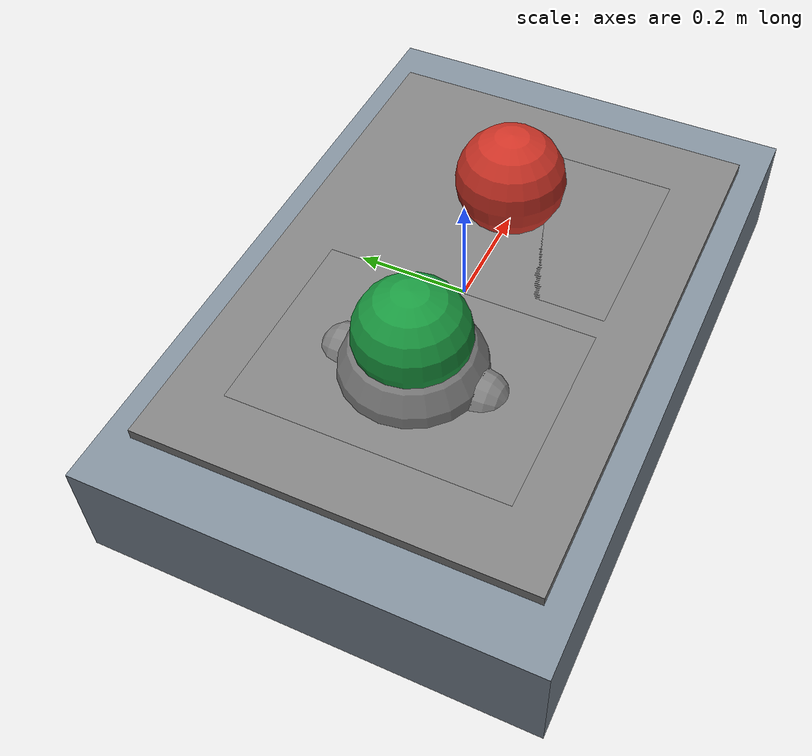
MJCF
<mujoco model="tactile_contact">
  <compiler angle="degree"/>
  <default>
    <geom friction="0.6 0 0"/>
    <default class="pad"><site type="box" size="0.18 0.25 0.02"/></default>
  </default>
  <worldbody>
    <body name="plate" pos="0 0 -0.1" childclass="pad">
      <geom type="box" size="0.6 0.4 0.1" rgba="0.5 0.55 0.6 1"/>
      <site name="left" pos="-0.2 0 0.1"/>
      <site name="right" pos="0.2 0 0.1" euler="0 0 90" size="0.25 0.18 0.02"/>
      <site name="total" pos="0 0 0.1" size="0.5 0.35 0.02"/>
      <site name="sphere" type="sphere" pos="-0.2 0 0.1" size="0.13"/>
      <site name="ellipsoid" type="ellipsoid" pos="-0.2 0 0.1" size="0.12 0.2 0.02" xyaxes="1 0 0 0 1 0"/>
      <site name="capsule" type="capsule" size="0.05 0.12" fromto="-0.2 -0.12 0.1 -0.2 0.12 0.1"/>
      <site name="cylinder" type="cylinder" size="0.12 0.02" pos="-0.2 0 0.1" axisangle="0 0 1 90"/>
      <site name="above" type="sphere" size="0.04" pos="-0.2 0 0.2" zaxis="0 0 -1"/>
      <site name="below" type="sphere" size="0.04" pos="-0.2 0 -0.1"/>
    </body>
    <body name="left_load" pos="-0.2 0 0.0999">
      <freejoint/>
      <inertial pos="0 0 0" mass="1" diaginertia="0.004 0.004 0.004"/>
      <geom type="sphere" size="0.1" rgba="0.1 0.6 0.25 1"/>
    </body>
    <body name="right_load" pos="0.2 0 0.0999">
      <freejoint/>
      <inertial pos="0 0 0" mass="2" diaginertia="0.008 0.008 0.008"/>
      <geom type="sphere" size="0.1" rgba="0.8 0.2 0.15 1"/>
    </body>
  </worldbody>
  <sensor>
    <touch name="left" site="left"/>
    <touch name="right" site="right"/>
    <touch name="total" site="total"/>
    <touch name="sphere" site="sphere"/>
    <touch name="ellipsoid" site="ellipsoid"/>
    <touch name="capsule" site="capsule"/>
    <touch name="cylinder" site="cylinder"/>
    <touch name="above" site="above"/>
    <touch name="below" site="below"/>
  </sensor>
</mujoco>
